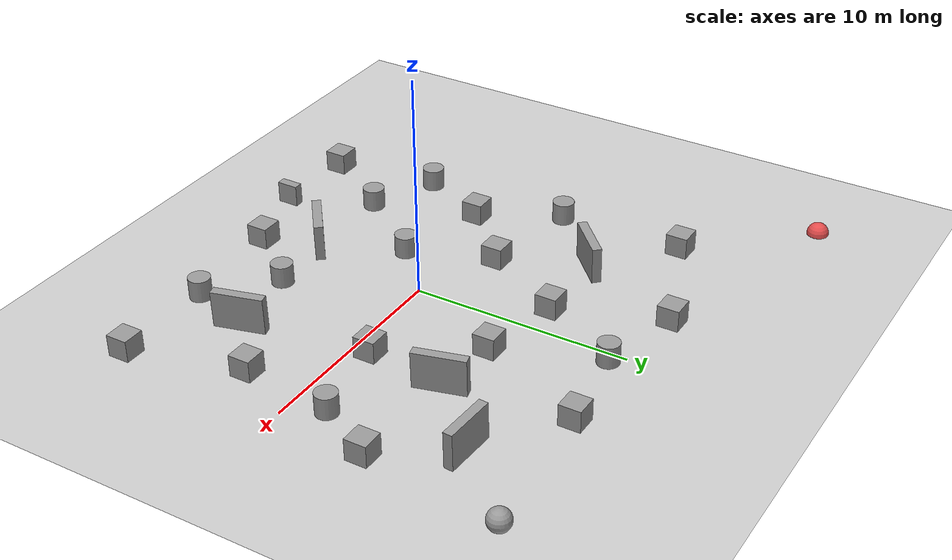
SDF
<sdf version="1.6">
 <world name="default">
  <light name="sun" type="directional">
   <pose>0 0 10 0 -0 0</pose>
   <diffuse>0.8 0.8 0.8 1</diffuse>
   <specular>0.1 0.1 0.1 1</specular>
   <attenuation>
    <range>1000</range>
    <constant>0.9</constant>
    <linear>0.01</linear>
    <quadratic>0.001</quadratic>
   </attenuation>
   <direction>-0.5 0.5 -1</direction>
  </light>
  <model name="ground_plane">
   <static>1</static>
   <link name="link">
    <collision name="collision">
     <geometry><plane><normal>0 0 1</normal><size>100 100</size></plane></geometry>
     <surface><friction><ode><mu>100</mu><mu2>50</mu2></ode></friction></surface>
    </collision>
    <visual name="visual">
     <cast_shadows>0</cast_shadows>
     <geometry><plane><normal>0 0 1</normal><size>100 100</size></plane></geometry>
     <material>
      <script><uri>file://media/materials/scripts/gazebo.material</uri><name>Gazebo/Grey</name></script>
     </material>
    </visual>
   </link>
  </model>
  <gravity>0 0 -9.8</gravity>
  <magnetic_field>6e-06 2.3e-05 -4.2e-05</magnetic_field>
  <atmosphere type="adiabatic"/>
  <physics name="default_physics" default="0" type="ode">
   <max_step_size>0.001</max_step_size>
   <real_time_factor>1</real_time_factor>
   <real_time_update_rate>1000</real_time_update_rate>
  </physics>
  <scene><ambient>0.4 0.4 0.4 1</ambient><background>0.7 0.7 0.7 1</background><shadows>1</shadows></scene>
  <spherical_coordinates>
   <surface_model>EARTH_WGS84</surface_model>
   <latitude_deg>0</latitude_deg>
   <longitude_deg>0</longitude_deg>
   <elevation>0</elevation>
   <heading_deg>0</heading_deg>
  </spherical_coordinates>
  <model name="unit_box_0">
   <pose>-3.67549 1.71608 0.499995 0 1e-05 0</pose>
   <link name="link">
    <inertial>
     <mass>1</mass>
     <inertia>
      <ixx>0.166667</ixx>
      <ixy>0</ixy>
      <ixz>0</ixz>
      <iyy>0.166667</iyy>
      <iyz>0</iyz>
      <izz>0.166667</izz>
     </inertia>
    </inertial>
    <collision name="collision"><geometry><box><size>1 1 1</size></box></geometry></collision>
    <visual name="visual">
     <geometry><box><size>1 1 1</size></box></geometry>
     <material>
      <script><name>Gazebo/Grey</name><uri>file://media/materials/scripts/gazebo.material</uri></script>
     </material>
    </visual>
   </link>
  </model>
  <model name="unit_box_1">
   <pose>-3.2991 10.4497 0.499995 -1e-05 -0 0</pose>
   <link name="link">
    <inertial>
     <mass>1</mass>
     <inertia>
      <ixx>0.166667</ixx>
      <ixy>0</ixy>
      <ixz>0</ixz>
      <iyy>0.166667</iyy>
      <iyz>0</iyz>
      <izz>0.166667</izz>
     </inertia>
    </inertial>
    <collision name="collision"><geometry><box><size>1 1 1</size></box></geometry></collision>
    <visual name="visual">
     <geometry><box><size>1 1 1</size></box></geometry>
     <material>
      <script><name>Gazebo/Grey</name><uri>file://media/materials/scripts/gazebo.material</uri></script>
     </material>
    </visual>
   </link>
  </model>
  <model name="unit_box_2">
   <pose>-1.46005 5.6646 0.499995 0 1e-05 0</pose>
   <link name="link">
    <inertial>
     <mass>1</mass>
     <inertia>
      <ixx>0.166667</ixx>
      <ixy>0</ixy>
      <ixz>0</ixz>
      <iyy>0.166667</iyy>
      <iyz>0</iyz>
      <izz>0.166667</izz>
     </inertia>
    </inertial>
    <collision name="collision"><geometry><box><size>1 1 1</size></box></geometry></collision>
    <visual name="visual">
     <geometry><box><size>1 1 1</size></box></geometry>
     <material>
      <script><name>Gazebo/Grey</name><uri>file://media/materials/scripts/gazebo.material</uri></script>
     </material>
    </visual>
   </link>
  </model>
  <model name="unit_box_3">
   <pose>-6.50286 -0.994075 0.499995 -1e-05 -0 -0</pose>
   <link name="link">
    <inertial>
     <mass>1</mass>
     <inertia>
      <ixx>0.166667</ixx>
      <ixy>0</ixy>
      <ixz>0</ixz>
      <iyy>0.166667</iyy>
      <iyz>0</iyz>
      <izz>0.166667</izz>
     </inertia>
    </inertial>
    <collision name="collision"><geometry><box><size>1 1 1</size></box></geometry></collision>
    <visual name="visual">
     <geometry><box><size>1 1 1</size></box></geometry>
     <material>
      <script><name>Gazebo/Grey</name><uri>file://media/materials/scripts/gazebo.material</uri></script>
     </material>
    </visual>
   </link>
  </model>
  <model name="unit_box_4">
   <pose>10.4957 4.27549 0.499995 0 1e-05 0</pose>
   <link name="link">
    <inertial>
     <mass>1</mass>
     <inertia>
      <ixx>0.166667</ixx>
      <ixy>0</ixy>
      <ixz>0</ixz>
      <iyy>0.166667</iyy>
      <iyz>0</iyz>
      <izz>0.166667</izz>
     </inertia>
    </inertial>
    <collision name="collision"><geometry><box><size>1 1 1</size></box></geometry></collision>
    <visual name="visual">
     <geometry><box><size>1 1 1</size></box></geometry>
     <material>
      <script><name>Gazebo/Grey</name><uri>file://media/materials/scripts/gazebo.material</uri></script>
     </material>
    </visual>
   </link>
  </model>
  <model name="unit_cylinder_0">
   <pose>0.525015 9.41281 0.5 0 -0 0</pose>
   <link name="link">
    <inertial>
     <mass>1</mass>
     <inertia><ixx>0.145833</ixx><ixy>0</ixy><ixz>0</ixz><iyy>0.145833</iyy><iyz>0</iyz><izz>0.125</izz></inertia>
    </inertial>
    <collision name="collision">
     <geometry><cylinder><radius>0.5</radius><length>1</length></cylinder></geometry>
    </collision>
    <visual name="visual">
     <geometry><cylinder><radius>0.5</radius><length>1</length></cylinder></geometry>
     <material>
      <script><name>Gazebo/Grey</name><uri>file://media/materials/scripts/gazebo.material</uri></script>
     </material>
    </visual>
   </link>
  </model>
  <model name="unit_cylinder_1">
   <pose>-2.26939 -2.15261 0.499992 -3e-06 2e-06 0</pose>
   <link name="link">
    <inertial>
     <mass>1</mass>
     <inertia><ixx>0.145833</ixx><ixy>0</ixy><ixz>0</ixz><iyy>0.145833</iyy><iyz>0</iyz><izz>0.125</izz></inertia>
    </inertial>
    <collision name="collision">
     <geometry><cylinder><radius>0.5</radius><length>1</length></cylinder></geometry>
    </collision>
    <visual name="visual">
     <geometry><cylinder><radius>0.5</radius><length>1</length></cylinder></geometry>
     <material>
      <script><name>Gazebo/Grey</name><uri>file://media/materials/scripts/gazebo.material</uri></script>
     </material>
    </visual>
   </link>
  </model>
  <model name="unit_cylinder_2">
   <pose>-5.00778 -5.72124 0.499997 3e-06 -2e-06 0</pose>
   <link name="link">
    <inertial>
     <mass>1</mass>
     <inertia><ixx>0.145833</ixx><ixy>0</ixy><ixz>0</ixz><iyy>0.145833</iyy><iyz>0</iyz><izz>0.125</izz></inertia>
    </inertial>
    <collision name="collision">
     <geometry><cylinder><radius>0.5</radius><length>1</length></cylinder></geometry>
    </collision>
    <visual name="visual">
     <geometry><cylinder><radius>0.5</radius><length>1</length></cylinder></geometry>
     <material>
      <script><name>Gazebo/Grey</name><uri>file://media/materials/scripts/gazebo.material</uri></script>
     </material>
    </visual>
   </link>
  </model>
  <model name="unit_box_5">
   <pose>4.97343 0.856951 0.499995 0 1e-05 0</pose>
   <link name="link">
    <inertial>
     <mass>1</mass>
     <inertia>
      <ixx>0.166667</ixx>
      <ixy>0</ixy>
      <ixz>0</ixz>
      <iyy>0.166667</iyy>
      <iyz>0</iyz>
      <izz>0.166667</izz>
     </inertia>
    </inertial>
    <collision name="collision"><geometry><box><size>1 1 1</size></box></geometry></collision>
    <visual name="visual">
     <geometry><box><size>1 1 1</size></box></geometry>
     <material>
      <script><name>Gazebo/Grey</name><uri>file://media/materials/scripts/gazebo.material</uri></script>
     </material>
    </visual>
   </link>
  </model>
  <model name="unit_cylinder_3">
   <pose>2.4509 -5.46721 0.499997 3e-06 -2e-06 0</pose>
   <link name="link">
    <inertial>
     <mass>1</mass>
     <inertia><ixx>0.145833</ixx><ixy>0</ixy><ixz>0</ixz><iyy>0.145833</iyy><iyz>0</iyz><izz>0.125</izz></inertia>
    </inertial>
    <collision name="collision">
     <geometry><cylinder><radius>0.5</radius><length>1</length></cylinder></geometry>
    </collision>
    <visual name="visual">
     <geometry><cylinder><radius>0.5</radius><length>1</length></cylinder></geometry>
     <material>
      <script><name>Gazebo/Grey</name><uri>file://media/materials/scripts/gazebo.material</uri></script>
     </material>
    </visual>
   </link>
  </model>
  <model name="unit_sphere_1">
   <pose>11.3891 10.6736 0.5 0 -0 0</pose>
   <link name="link">
    <inertial>
     <mass>1</mass>
     <inertia><ixx>0.1</ixx><ixy>0</ixy><ixz>0</ixz><iyy>0.1</iyy><iyz>0</iyz><izz>0.1</izz></inertia>
    </inertial>
    <collision name="collision"><geometry><sphere><radius>0.5</radius></sphere></geometry></collision>
    <visual name="visual">
     <geometry><sphere><radius>0.5</radius></sphere></geometry>
     <material>
      <script><name>Gazebo/Grey</name><uri>file://media/materials/scripts/gazebo.material</uri></script>
     </material>
    </visual>
   </link>
  </model>
  <model name="unit_cylinder_4">
   <pose>5.1375 -7.82257 0.5 0 -0 0</pose>
   <link name="link">
    <inertial>
     <mass>1</mass>
     <inertia><ixx>0.145833</ixx><ixy>0</ixy><ixz>0</ixz><iyy>0.145833</iyy><iyz>0</iyz><izz>0.125</izz></inertia>
    </inertial>
    <collision name="collision">
     <geometry><cylinder><radius>0.5</radius><length>1</length></cylinder></geometry>
    </collision>
    <visual name="visual">
     <geometry><cylinder><radius>0.5</radius><length>1</length></cylinder></geometry>
     <material>
      <script><name>Gazebo/Grey</name><uri>file://media/materials/scripts/gazebo.material</uri></script>
     </material>
    </visual>
   </link>
  </model>
  <model name="unit_box_6">
   <pose>-7.26809 -9.17929 0.499995 -1e-05 -0 -0</pose>
   <link name="link">
    <inertial>
     <mass>1</mass>
     <inertia>
      <ixx>0.166667</ixx>
      <ixy>0</ixy>
      <ixz>0</ixz>
      <iyy>0.166667</iyy>
      <iyz>0</iyz>
      <izz>0.166667</izz>
     </inertia>
    </inertial>
    <collision name="collision"><geometry><box><size>1 1 1</size></box></geometry></collision>
    <visual name="visual">
     <geometry><box><size>1 1 1</size></box></geometry>
     <material>
      <script><name>Gazebo/Grey</name><uri>file://media/materials/scripts/gazebo.material</uri></script>
     </material>
    </visual>
   </link>
  </model>
  <model name="unit_box_7">
   <pose>9.92051 -7.76699 0.499995 0 1e-05 0</pose>
   <link name="link">
    <inertial>
     <mass>1</mass>
     <inertia>
      <ixx>0.166667</ixx>
      <ixy>0</ixy>
      <ixz>0</ixz>
      <iyy>0.166667</iyy>
      <iyz>0</iyz>
      <izz>0.166667</izz>
     </inertia>
    </inertial>
    <collision name="collision"><geometry><box><size>1 1 1</size></box></geometry></collision>
    <visual name="visual">
     <geometry><box><size>1 1 1</size></box></geometry>
     <material>
      <script><name>Gazebo/Grey</name><uri>file://media/materials/scripts/gazebo.material</uri></script>
     </material>
    </visual>
   </link>
  </model>
  <model name="unit_box_8">
   <pose>0.166115 -8.22319 0.499995 -1e-05 -0 -0</pose>
   <link name="link">
    <inertial>
     <mass>1</mass>
     <inertia>
      <ixx>0.166667</ixx>
      <ixy>0</ixy>
      <ixz>0</ixz>
      <iyy>0.166667</iyy>
      <iyz>0</iyz>
      <izz>0.166667</izz>
     </inertia>
    </inertial>
    <collision name="collision"><geometry><box><size>1 1 1</size></box></geometry></collision>
    <visual name="visual">
     <geometry><box><size>1 1 1</size></box></geometry>
     <material>
      <script><name>Gazebo/Grey</name><uri>file://media/materials/scripts/gazebo.material</uri></script>
     </material>
    </visual>
   </link>
  </model>
  <model name="unit_box_9">
   <pose>2.3292 4.89794 0.499995 0 1e-05 0</pose>
   <link name="link">
    <inertial>
     <mass>1</mass>
     <inertia>
      <ixx>0.166667</ixx>
      <ixy>0</ixy>
      <ixz>0</ixz>
      <iyy>0.166667</iyy>
      <iyz>0</iyz>
      <izz>0.166667</izz>
     </inertia>
    </inertial>
    <collision name="collision"><geometry><box><size>1 1 1</size></box></geometry></collision>
    <visual name="visual">
     <geometry><box><size>1 1 1</size></box></geometry>
     <material>
      <script><name>Gazebo/Grey</name><uri>file://media/materials/scripts/gazebo.material</uri></script>
     </material>
    </visual>
   </link>
  </model>
  <model name="unit_box_10">
   <pose>-8.63656 8.3542 0.499995 -1e-05 -0 -0</pose>
   <link name="link">
    <inertial>
     <mass>1</mass>
     <inertia>
      <ixx>0.166667</ixx>
      <ixy>0</ixy>
      <ixz>0</ixz>
      <iyy>0.166667</iyy>
      <iyz>0</iyz>
      <izz>0.166667</izz>
     </inertia>
    </inertial>
    <collision name="collision"><geometry><box><size>1 1 1</size></box></geometry></collision>
    <visual name="visual">
     <geometry><box><size>1 1 1</size></box></geometry>
     <material>
      <script><name>Gazebo/Grey</name><uri>file://media/materials/scripts/gazebo.material</uri></script>
     </material>
    </visual>
   </link>
  </model>
  <model name="unit_box_11">
   <pose>4.65872 10.0985 0.499995 0 1e-05 0</pose>
   <link name="link">
    <inertial>
     <mass>1</mass>
     <inertia>
      <ixx>0.166667</ixx>
      <ixy>0</ixy>
      <ixz>0</ixz>
      <iyy>0.166667</iyy>
      <iyz>0</iyz>
      <izz>0.166667</izz>
     </inertia>
    </inertial>
    <collision name="collision"><geometry><box><size>1 1 1</size></box></geometry></collision>
    <visual name="visual">
     <geometry><box><size>1 1 1</size></box></geometry>
     <material>
      <script><name>Gazebo/Grey</name><uri>file://media/materials/scripts/gazebo.material</uri></script>
     </material>
    </visual>
   </link>
  </model>
  <model name="unit_cylinder_5">
   <pose>-8.39409 2.53726 0.499998 3e-06 -4e-06 0</pose>
   <link name="link">
    <inertial>
     <mass>1</mass>
     <inertia><ixx>0.145833</ixx><ixy>0</ixy><ixz>0</ixz><iyy>0.145833</iyy><iyz>0</iyz><izz>0.125</izz></inertia>
    </inertial>
    <collision name="collision">
     <geometry><cylinder><radius>0.5</radius><length>1</length></cylinder></geometry>
    </collision>
    <visual name="visual">
     <geometry><cylinder><radius>0.5</radius><length>1</length></cylinder></geometry>
     <material>
      <script><name>Gazebo/Grey</name><uri>file://media/materials/scripts/gazebo.material</uri></script>
     </material>
    </visual>
   </link>
  </model>
  <model name="unit_cylinder_6">
   <pose>8.9976 1.56755 0.5 0 -0 0</pose>
   <link name="link">
    <inertial>
     <mass>1</mass>
     <inertia><ixx>0.145833</ixx><ixy>0</ixy><ixz>0</ixz><iyy>0.145833</iyy><iyz>0</iyz><izz>0.125</izz></inertia>
    </inertial>
    <collision name="collision">
     <geometry><cylinder><radius>0.5</radius><length>1</length></cylinder></geometry>
    </collision>
    <visual name="visual">
     <geometry><cylinder><radius>0.5</radius><length>1</length></cylinder></geometry>
     <material>
      <script><name>Gazebo/Grey</name><uri>file://media/materials/scripts/gazebo.material</uri></script>
     </material>
    </visual>
   </link>
  </model>
  <model name="unit_cylinder_7">
   <pose>-8.03787 -4.33587 0.499992 -3e-06 4e-06 0</pose>
   <link name="link">
    <inertial>
     <mass>1</mass>
     <inertia><ixx>0.145833</ixx><ixy>0</ixy><ixz>0</ixz><iyy>0.145833</iyy><iyz>0</iyz><izz>0.125</izz></inertia>
    </inertial>
    <collision name="collision">
     <geometry><cylinder><radius>0.5</radius><length>1</length></cylinder></geometry>
    </collision>
    <visual name="visual">
     <geometry><cylinder><radius>0.5</radius><length>1</length></cylinder></geometry>
     <material>
      <script><name>Gazebo/Grey</name><uri>file://media/materials/scripts/gazebo.material</uri></script>
     </material>
    </visual>
   </link>
  </model>
  <model name="unit_box_12">
   <pose>8.52195 -2.66947 0.499995 -1e-05 -0 -0</pose>
   <link name="link">
    <inertial>
     <mass>1</mass>
     <inertia>
      <ixx>0.166667</ixx>
      <ixy>0</ixy>
      <ixz>0</ixz>
      <iyy>0.166667</iyy>
      <iyz>0</iyz>
      <izz>0.166667</izz>
     </inertia>
    </inertial>
    <collision name="collision"><geometry><box><size>1 1 1</size></box></geometry></collision>
    <visual name="visual">
     <geometry><box><size>1 1 1</size></box></geometry>
     <material>
      <script><name>Gazebo/Grey</name><uri>file://media/materials/scripts/gazebo.material</uri></script>
     </material>
    </visual>
   </link>
  </model>
  <model name="unit_sphere_0_0">
   <link name="link">
    <inertial>
     <mass>1</mass>
     <inertia><ixx>0.1</ixx><ixy>0</ixy><ixz>0</ixz><iyy>0.1</iyy><iyz>0</iyz><izz>0.1</izz></inertia>
    </inertial>
    <visual name="visual">
     <geometry><sphere><radius>0.5</radius></sphere></geometry>
     <material>
      <script><name>Gazebo/Grey</name><uri>file://media/materials/scripts/gazebo.material</uri></script>
      <ambient>0.9 0.3 0.3 1</ambient>
      <diffuse>0.7 0.7 0.7 1</diffuse>
      <specular>0 0.01 0.01 1</specular>
      <emissive>0 0 0 1</emissive>
      <shader type="vertex"><normal_map>__default__</normal_map></shader>
     </material>
    </visual>
    <collision name="collision">
     <geometry><sphere><radius>0.5</radius></sphere></geometry>
     <surface>
      <friction>
       <ode><mu>1</mu><mu2>1</mu2><fdir1>0 0 0</fdir1><slip1>0</slip1><slip2>0</slip2></ode>
       <torsional>
        <coefficient>1</coefficient>
        <patch_radius>0</patch_radius>
        <surface_radius>0</surface_radius>
        <use_patch_radius>1</use_patch_radius>
        <ode><slip>0</slip></ode>
       </torsional>
      </friction>
      <bounce><restitution_coefficient>0</restitution_coefficient><threshold>1e+06</threshold></bounce>
      <contact>
       <collide_without_contact>0</collide_without_contact>
       <collide_without_contact_bitmask>1</collide_without_contact_bitmask>
       <collide_bitmask>1</collide_bitmask>
       <ode>
        <soft_cfm>0</soft_cfm>
        <soft_erp>0.2</soft_erp>
        <kp>1e+13</kp>
        <kd>1</kd>
        <max_vel>0.01</max_vel>
        <min_depth>0</min_depth>
       </ode>
       <bullet>
        <split_impulse>1</split_impulse>
        <split_impulse_penetration_threshold>-0.01</split_impulse_penetration_threshold>
        <soft_cfm>0</soft_cfm>
        <soft_erp>0.2</soft_erp>
        <kp>1e+13</kp>
        <kd>1</kd>
       </bullet>
      </contact>
     </surface>
    </collision>
   </link>
   <static>0</static>
   <pose>-13.2814 13.1262 0.005 0 -0 0</pose>
  </model>
  <model name="unit_boxnarrow">
   <link name="link">
    <inertial>
     <mass>0.419186</mass>
     <inertia>
      <ixx>0.0698643</ixx>
      <ixy>0</ixy>
      <ixz>0</ixz>
      <iyy>0.0410702</iyy>
      <iyz>0</iyz>
      <izz>0.0410702</izz>
     </inertia>
    </inertial>
    <visual name="visual">
     <geometry><box><size>0.419183 1 1</size></box></geometry>
     <material>
      <script><name>Gazebo/Grey</name><uri>file://media/materials/scripts/gazebo.material</uri></script>
      <shader type="pixel"/>
     </material>
    </visual>
    <collision name="collision">
     <geometry><box><size>0.419183 1 1</size></box></geometry>
     <surface>
      <friction>
       <ode><mu>1</mu><mu2>1</mu2><fdir1>0 0 0</fdir1><slip1>0</slip1><slip2>0</slip2></ode>
       <torsional>
        <coefficient>1</coefficient>
        <patch_radius>0</patch_radius>
        <surface_radius>0</surface_radius>
        <use_patch_radius>1</use_patch_radius>
        <ode><slip>0</slip></ode>
       </torsional>
      </friction>
      <bounce><restitution_coefficient>0</restitution_coefficient><threshold>1e+06</threshold></bounce>
      <contact>
       <collide_without_contact>0</collide_without_contact>
       <collide_without_contact_bitmask>1</collide_without_contact_bitmask>
       <collide_bitmask>1</collide_bitmask>
       <ode>
        <soft_cfm>0</soft_cfm>
        <soft_erp>0.2</soft_erp>
        <kp>1e+13</kp>
        <kd>1</kd>
        <max_vel>0.01</max_vel>
        <min_depth>0</min_depth>
       </ode>
       <bullet>
        <split_impulse>1</split_impulse>
        <split_impulse_penetration_threshold>-0.01</split_impulse_penetration_threshold>
        <soft_cfm>0</soft_cfm>
        <soft_erp>0.2</soft_erp>
        <kp>1e+13</kp>
        <kd>1</kd>
       </bullet>
      </contact>
     </surface>
    </collision>
   </link>
   <static>0</static>
   <pose>-3.34968 -9.35572 0.5 0 -0 0</pose>
  </model>
  <model name="unit_boxnarrow_clone">
   <link name="link">
    <inertial>
     <mass>0.419186</mass>
     <inertia>
      <ixx>0.0698643</ixx>
      <ixy>0</ixy>
      <ixz>0</ixz>
      <iyy>0.0410702</iyy>
      <iyz>0</iyz>
      <izz>0.0410702</izz>
     </inertia>
    </inertial>
    <visual name="visual">
     <geometry><box><size>0.419183 2.3268 1.68614</size></box></geometry>
     <material>
      <script><name>Gazebo/Grey</name><uri>file://media/materials/scripts/gazebo.material</uri></script>
      <shader type="pixel"/>
     </material>
    </visual>
    <collision name="collision">
     <geometry><box><size>0.419183 2.3268 1.68614</size></box></geometry>
     <surface>
      <friction>
       <ode><mu>1</mu><mu2>1</mu2><fdir1>0 0 0</fdir1><slip1>0</slip1><slip2>0</slip2></ode>
       <torsional>
        <coefficient>1</coefficient>
        <patch_radius>0</patch_radius>
        <surface_radius>0</surface_radius>
        <use_patch_radius>1</use_patch_radius>
        <ode><slip>0</slip></ode>
       </torsional>
      </friction>
      <bounce><restitution_coefficient>0</restitution_coefficient><threshold>1e+06</threshold></bounce>
      <contact>
       <collide_without_contact>0</collide_without_contact>
       <collide_without_contact_bitmask>1</collide_without_contact_bitmask>
       <collide_bitmask>1</collide_bitmask>
       <ode>
        <soft_cfm>0</soft_cfm>
        <soft_erp>0.2</soft_erp>
        <kp>1e+13</kp>
        <kd>1</kd>
        <max_vel>0.01</max_vel>
        <min_depth>0</min_depth>
       </ode>
       <bullet>
        <split_impulse>1</split_impulse>
        <split_impulse_penetration_threshold>-0.01</split_impulse_penetration_threshold>
        <soft_cfm>0</soft_cfm>
        <soft_erp>0.2</soft_erp>
        <kp>1e+13</kp>
        <kd>1</kd>
       </bullet>
      </contact>
     </surface>
    </collision>
   </link>
   <static>0</static>
   <pose>5.59583 4.60776 0.938433 0.005364 0.020988 0.250238</pose>
  </model>
  <model name="unit_boxnarrow_clone_clone">
   <link name="link">
    <inertial>
     <mass>0.419186</mass>
     <inertia>
      <ixx>0.0698643</ixx>
      <ixy>0</ixy>
      <ixz>0</ixz>
      <iyy>0.0410702</iyy>
      <iyz>0</iyz>
      <izz>0.0410702</izz>
     </inertia>
    </inertial>
    <visual name="visual">
     <geometry><box><size>0.419183 2.3268 1.68614</size></box></geometry>
     <material>
      <script><name>Gazebo/Grey</name><uri>file://media/materials/scripts/gazebo.material</uri></script>
      <shader type="pixel"/>
     </material>
    </visual>
    <collision name="collision">
     <geometry><box><size>0.419183 2.3268 1.68614</size></box></geometry>
     <surface>
      <friction>
       <ode><mu>1</mu><mu2>1</mu2><fdir1>0 0 0</fdir1><slip1>0</slip1><slip2>0</slip2></ode>
       <torsional>
        <coefficient>1</coefficient>
        <patch_radius>0</patch_radius>
        <surface_radius>0</surface_radius>
        <use_patch_radius>1</use_patch_radius>
        <ode><slip>0</slip></ode>
       </torsional>
      </friction>
      <bounce><restitution_coefficient>0</restitution_coefficient><threshold>1e+06</threshold></bounce>
      <contact>
       <collide_without_contact>0</collide_without_contact>
       <collide_without_contact_bitmask>1</collide_without_contact_bitmask>
       <collide_bitmask>1</collide_bitmask>
       <ode>
        <soft_cfm>0</soft_cfm>
        <soft_erp>0.2</soft_erp>
        <kp>1e+13</kp>
        <kd>1</kd>
        <max_vel>0.01</max_vel>
        <min_depth>0</min_depth>
       </ode>
       <bullet>
        <split_impulse>1</split_impulse>
        <split_impulse_penetration_threshold>-0.01</split_impulse_penetration_threshold>
        <soft_cfm>0</soft_cfm>
        <soft_erp>0.2</soft_erp>
        <kp>1e+13</kp>
        <kd>1</kd>
       </bullet>
      </contact>
     </surface>
    </collision>
   </link>
   <static>0</static>
   <pose>8.4356 7.52309 0.938433 0.021611 0.001492 1.50187</pose>
  </model>
  <model name="unit_boxnarrow_clone_clone_0">
   <link name="link">
    <inertial>
     <mass>0.419186</mass>
     <inertia>
      <ixx>0.0698643</ixx>
      <ixy>0</ixy>
      <ixz>0</ixz>
      <iyy>0.0410702</iyy>
      <iyz>0</iyz>
      <izz>0.0410702</izz>
     </inertia>
    </inertial>
    <visual name="visual">
     <geometry><box><size>0.419183 2.3268 1.68614</size></box></geometry>
     <material>
      <script><name>Gazebo/Grey</name><uri>file://media/materials/scripts/gazebo.material</uri></script>
      <shader type="pixel"/>
     </material>
    </visual>
    <collision name="collision">
     <geometry><box><size>0.419183 2.3268 1.68614</size></box></geometry>
     <surface>
      <friction>
       <ode><mu>1</mu><mu2>1</mu2><fdir1>0 0 0</fdir1><slip1>0</slip1><slip2>0</slip2></ode>
       <torsional>
        <coefficient>1</coefficient>
        <patch_radius>0</patch_radius>
        <surface_radius>0</surface_radius>
        <use_patch_radius>1</use_patch_radius>
        <ode><slip>0</slip></ode>
       </torsional>
      </friction>
      <bounce><restitution_coefficient>0</restitution_coefficient><threshold>1e+06</threshold></bounce>
      <contact>
       <collide_without_contact>0</collide_without_contact>
       <collide_without_contact_bitmask>1</collide_without_contact_bitmask>
       <collide_bitmask>1</collide_bitmask>
       <ode>
        <soft_cfm>0</soft_cfm>
        <soft_erp>0.2</soft_erp>
        <kp>1e+13</kp>
        <kd>1</kd>
        <max_vel>0.01</max_vel>
        <min_depth>0</min_depth>
       </ode>
       <bullet>
        <split_impulse>1</split_impulse>
        <split_impulse_penetration_threshold>-0.01</split_impulse_penetration_threshold>
        <soft_cfm>0</soft_cfm>
        <soft_erp>0.2</soft_erp>
        <kp>1e+13</kp>
        <kd>1</kd>
       </bullet>
      </contact>
     </surface>
    </collision>
   </link>
   <static>0</static>
   <pose>6.22237 -4.78438 0.938433 0.005364 0.020988 0.250238</pose>
  </model>
  <model name="unit_boxnarrow_clone_clone_1">
   <link name="link">
    <inertial>
     <mass>0.419186</mass>
     <inertia>
      <ixx>0.0698643</ixx>
      <ixy>0</ixy>
      <ixz>0</ixz>
      <iyy>0.0410702</iyy>
      <iyz>0</iyz>
      <izz>0.0410702</izz>
     </inertia>
    </inertial>
    <visual name="visual">
     <geometry><box><size>0.419183 2.3268 1.68614</size></box></geometry>
     <material>
      <script><name>Gazebo/Grey</name><uri>file://media/materials/scripts/gazebo.material</uri></script>
      <shader type="pixel"/>
     </material>
    </visual>
    <collision name="collision">
     <geometry><box><size>0.419183 2.3268 1.68614</size></box></geometry>
     <surface>
      <friction>
       <ode><mu>1</mu><mu2>1</mu2><fdir1>0 0 0</fdir1><slip1>0</slip1><slip2>0</slip2></ode>
       <torsional>
        <coefficient>1</coefficient>
        <patch_radius>0</patch_radius>
        <surface_radius>0</surface_radius>
        <use_patch_radius>1</use_patch_radius>
        <ode><slip>0</slip></ode>
       </torsional>
      </friction>
      <bounce><restitution_coefficient>0</restitution_coefficient><threshold>1e+06</threshold></bounce>
      <contact>
       <collide_without_contact>0</collide_without_contact>
       <collide_without_contact_bitmask>1</collide_without_contact_bitmask>
       <collide_bitmask>1</collide_bitmask>
       <ode>
        <soft_cfm>0</soft_cfm>
        <soft_erp>0.2</soft_erp>
        <kp>1e+13</kp>
        <kd>1</kd>
        <max_vel>0.01</max_vel>
        <min_depth>0</min_depth>
       </ode>
       <bullet>
        <split_impulse>1</split_impulse>
        <split_impulse_penetration_threshold>-0.01</split_impulse_penetration_threshold>
        <soft_cfm>0</soft_cfm>
        <soft_erp>0.2</soft_erp>
        <kp>1e+13</kp>
        <kd>1</kd>
       </bullet>
      </contact>
     </surface>
    </collision>
   </link>
   <static>0</static>
   <pose>-0.685153 -5.76621 0.938433 -0.017061 0.013349 -0.906924</pose>
  </model>
  <model name="unit_boxnarrow_clone_clone_2">
   <link name="link">
    <inertial>
     <mass>0.419186</mass>
     <inertia>
      <ixx>0.0698643</ixx>
      <ixy>0</ixy>
      <ixz>0</ixz>
      <iyy>0.0410702</iyy>
      <iyz>0</iyz>
      <izz>0.0410702</izz>
     </inertia>
    </inertial>
    <visual name="visual">
     <geometry><box><size>0.419183 2.3268 1.68614</size></box></geometry>
     <material>
      <script><name>Gazebo/Grey</name><uri>file://media/materials/scripts/gazebo.material</uri></script>
      <shader type="pixel"/>
     </material>
    </visual>
    <collision name="collision">
     <geometry><box><size>0.419183 2.3268 1.68614</size></box></geometry>
     <surface>
      <friction>
       <ode><mu>1</mu><mu2>1</mu2><fdir1>0 0 0</fdir1><slip1>0</slip1><slip2>0</slip2></ode>
       <torsional>
        <coefficient>1</coefficient>
        <patch_radius>0</patch_radius>
        <surface_radius>0</surface_radius>
        <use_patch_radius>1</use_patch_radius>
        <ode><slip>0</slip></ode>
       </torsional>
      </friction>
      <bounce><restitution_coefficient>0</restitution_coefficient><threshold>1e+06</threshold></bounce>
      <contact>
       <collide_without_contact>0</collide_without_contact>
       <collide_without_contact_bitmask>1</collide_without_contact_bitmask>
       <collide_bitmask>1</collide_bitmask>
       <ode>
        <soft_cfm>0</soft_cfm>
        <soft_erp>0.2</soft_erp>
        <kp>1e+13</kp>
        <kd>1</kd>
        <max_vel>0.01</max_vel>
        <min_depth>0</min_depth>
       </ode>
       <bullet>
        <split_impulse>1</split_impulse>
        <split_impulse_penetration_threshold>-0.01</split_impulse_penetration_threshold>
        <soft_cfm>0</soft_cfm>
        <soft_erp>0.2</soft_erp>
        <kp>1e+13</kp>
        <kd>1</kd>
       </bullet>
      </contact>
     </surface>
    </collision>
   </link>
   <static>0</static>
   <pose>-5.16911 5.54112 0.938433 -0.015558 0.015074 -0.801271</pose>
  </model>
 </world>
</sdf>
